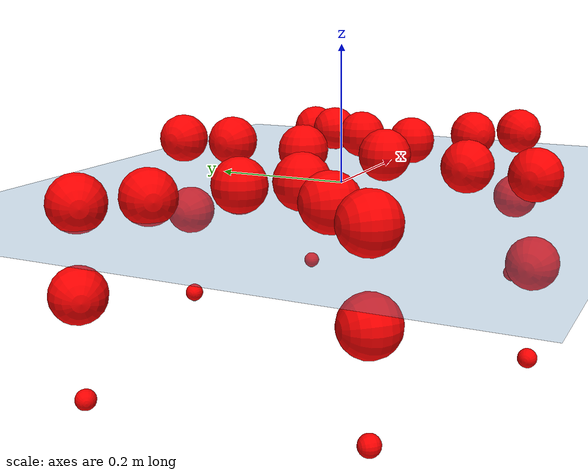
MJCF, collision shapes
<mujoco model="Golem">
  <compiler angle="radian" assetdir="assets" balanceinertia="true" inertiafromgeom="false"/>

  <option timestep="0.005" density="1.2" viscosity="2e-05"/>

  <size nkey="1"/>

  <visual>
    <quality shadowsize="8192"/>
    <map shadowclip="0.5"/>
  </visual>

  <default>
    <default class="/">
      <joint armature="0.01" damping="0.01" frictionloss="0.01"/>
      <geom contype="0" conaffinity="0" group="1" solref="-1000 -80"/>
      <site size="0.01 0.005 0.005" group="5"/>
      <general forcelimited="true" biastype="affine" gainprm="25" biasprm="0 -25 -0.5"/>
      <default class="visual">
        <geom type="mesh" group="2"/>
      </default>
      <default class="collision">
        <geom group="3"/>
      </default>
      <default class="foot">
        <geom size="0.01 0 0" condim="6" group="4" priority="1" solimp="0.015 1 0.01"/>
      </default>
      <default class="reward_collision_sphere">
        <geom group="5" rgba="1 0 0 1"/>
      </default>
    </default>
  </default>

  <asset>
    <texture type="skybox" colorspace="auto" name="//unnamed_texture_0" builtin="gradient" rgb1="0.95 0.95 0.95" rgb2="0.95 0.95 0.95" width="100" height="600"/>
    <texture type="2d" colorspace="auto" name="texplane" builtin="checker" rgb1="0.345 0.575 0.748" rgb2="0.345 0.575 0.748" markrgb="1 1 1" width="512" height="512"/>
    <material name="MatPlane" class="/" texture="texplane" texuniform="true" texrepeat="2 2" specular="0.9"/>
    <mesh name="body" class="/" file="body.stl" scale="0.001 0.001 0.001"/>
    <mesh name="coxa" class="/" file="coxa.stl" scale="0.001 0.001 0.001"/>
    <mesh name="femur" class="/" file="femur.stl" scale="0.001 0.001 0.001"/>
    <mesh name="tibia" class="/" file="tibia.stl" scale="0.001 0.001 0.001"/>
    <mesh name="tarsus" class="/" file="tarsus.stl" scale="0.001 0.001 0.001"/>
  </asset>

  <worldbody>
    <geom name="floor" class="/" size="100 100 0.125" type="plane" group="0" material="MatPlane"/>
    <light name="toplight_shadow" class="/" pos="0 0 5" dir="0.0990148 0.0990148 -0.990148" type="directional" ambient="0.04 0.04 0.04" diffuse="0.55 0.55 0.55" specular="0.12 0.12 0.12"/>
    <light name="toplight_fill" class="/" pos="0 0 5" dir="0.0990148 0.0990148 -0.990148" type="directional" castshadow="false" ambient="0.04 0.04 0.04" diffuse="0.3 0.3 0.3" specular="0.08 0.08 0.08"/>
    <body name="trunk" pos="-0.00149336 0.0013029 -0.000508502" quat="1 5.16913e-05 0.000106866 0.000214417">
      <inertial pos="-0.00538066 0.000425878 -0.00608777" quat="0.999907 0.0128498 0.00150966 -0.00435945" mass="2.59619" diaginertia="0.0291314 0.0036609 0.00106774"/>
      <joint name="//unnamed_joint_0" type="free"/>
      <geom name="//unnamed_geom_1" class="/" pos="0 0 0.0424527" quat="1 0 0 0" type="mesh" rgba="0.9 0.9 0.9 1" mesh="body"/>
      <site name="imu" class="/" pos="0.17876 0.00785255 0.106533" size="0.00932107"/>
      <camera name="track" class="/" pos="0 -1.67122 0" quat="0.707107 0.707107 0 0" mode="trackcom"/>
      <camera name="ego_camera" class="/" pos="0.168661 0 0.0663324" quat="-0.5 -0.5 0.5 0.5"/>
      <body name="coxa_RR" pos="-0.233958 -0.0692324 0.0444661" quat="0.382948 3.56578e-05 -1.4014e-05 -0.92377">
        <inertial pos="-1.77814e-05 0.00294333 0.000197381" quat="0.999989 -0.00151758 -0.00300837 0.00337226" mass="0.164128" diaginertia="0.0379757 0.00435644 0.00130902"/>
        <joint name="coxa_joint_RR" class="/" pos="0 0 0" axis="-0.0372021 -0.033024 -0.998762" range="-3.05813 3.15134" armature="0.00954333" damping="0.0181333" frictionloss="0.00902257"/>
        <geom name="//unnamed_geom_2" class="/" type="mesh" rgba="0.2 0.2 0.2 1" mesh="coxa"/>
        <geom name="//unnamed_geom_3" class="reward_collision_sphere" size="0.0372843" pos="-0.0389217 0 0"/>
        <body name="femur_RR" pos="0.0699437 -0.00306518 -0.00277147" quat="0.500985 -0.499533 0.498788 0.500691">
          <inertial pos="0.000540481 0.000953038 0.00321909" quat="0.999961 0.000828953 0.00698791 -0.00524379" mass="0.173303" diaginertia="0.0358058 0.00450984 0.00134856"/>
          <joint name="femur_joint_RR" class="/" pos="0 0 0" axis="-0.0290297 -0.0216081 -0.999345" range="-3.14113 3.12997" armature="0.00926553" damping="0.011534" frictionloss="0.0085161"/>
          <geom name="//unnamed_geom_4" class="/" type="mesh" rgba="0.9 0.9 0.9 1" mesh="femur"/>
          <geom name="//unnamed_geom_5" class="reward_collision_sphere" size="0.0372843"/>
          <body name="tibia_RR" pos="0.00289081 -0.0927214 0.00973706" quat="1.51061e-05 1 -0.00050285 -0.000104866">
            <inertial pos="-0.00221845 0.00865088 0.00197792" quat="0.999038 -0.0149843 0.038492 0.0147143" mass="0.162025" diaginertia="0.0329034 0.00392713 0.001267"/>
            <joint name="tibia_joint_RR" class="/" pos="0 0 0" axis="0.0143678 -0.0160013 0.999769" stiffness="0.000170328" range="-3.22377 3.13008" armature="0.00839787" damping="0" frictionloss="0.00978051"/>
            <geom name="//unnamed_geom_6" class="/" type="mesh" rgba="0.2 0.2 0.2 1" mesh="tibia"/>
            <geom name="//unnamed_geom_7" class="reward_collision_sphere" size="0.0372843"/>
            <body name="tarsus_RR" pos="0.110673 0.00889473 0.00286268" quat="0.999999 0.000117228 0.00148363 0.000312879">
              <inertial pos="0.0806647 -0.000403711 0.00442721" quat="0.470027 0.520774 0.501143 0.50668" mass="0.152002" diaginertia="0.0360873 0.00394691 0.0014136"/>
              <joint name="tarsus_joint_RR" class="/" pos="0 0 0" axis="-0.0114776 -0.00254083 0.999931" range="-3.05577 3.11215" armature="0.0093913" damping="0.0130705" frictionloss="0.00666988"/>
              <geom name="//unnamed_geom_8" class="/" type="mesh" rgba="0.9 0.9 0.9 1" mesh="tarsus"/>
              <geom name="foot_1" class="foot" size="0.00843253" pos="0.145308 0 0" quat="0 -0.707107 0 0.707107"/>
              <geom name="//unnamed_geom_10" class="reward_collision_sphere" size="0.0372843"/>
              <geom name="//unnamed_geom_11" class="reward_collision_sphere" size="0.0139816" pos="0.139469 0 0"/>
              <site name="foot_1" class="foot" pos="0.145308 0 0" quat="0 -0.707107 0 0.707107" size="0.00932107"/>
            </body>
          </body>
        </body>
      </body>
      <body name="coxa_RM" pos="-0.000644825 -0.108526 0.0466333" quat="0.705823 0.00468383 0.000547046 -0.708372">
        <inertial pos="-0.0046012 0.00169615 0.00671622" quat="0.999997 -0.00179741 -0.00124254 -0.00139074" mass="0.162766" diaginertia="0.0379629 0.00378886 0.00126046"/>
        <joint name="coxa_joint_RM" class="/" pos="0 0 0" axis="0.00055654 -0.00261376 -0.999996" range="-3.09731 3.12212" armature="0.00674573" damping="0.0307644" frictionloss="0.00892395"/>
        <geom name="//unnamed_geom_12" class="/" type="mesh" rgba="0.2 0.2 0.2 1" mesh="coxa"/>
        <geom name="//unnamed_geom_13" class="reward_collision_sphere" size="0.0372843" pos="-0.0389217 0 0"/>
        <body name="femur_RM" pos="0.0816203 0.00684597 -0.00750349" quat="0.500728 -0.500183 0.499924 0.499164">
          <inertial pos="-0.00856295 0.00339385 0.00116264" quat="0.999996 0.000808699 -0.00096644 0.00250804" mass="0.178042" diaginertia="0.0440238 0.00447134 0.00155685"/>
          <joint name="femur_joint_RM" class="/" pos="0 0 0" axis="0.0195737 -0.0153249 -0.999691" range="-3.14585 3.29519" armature="0.00954075" damping="0" frictionloss="0.0106198"/>
          <geom name="//unnamed_geom_14" class="/" type="mesh" rgba="0.9 0.9 0.9 1" mesh="femur"/>
          <geom name="//unnamed_geom_15" class="reward_collision_sphere" size="0.0372843"/>
          <body name="tibia_RM" pos="0.00356038 -0.0946038 0.00118573" quat="-0.0013114 0.999998 -0.000582945 0.00111708">
            <inertial pos="0.00362746 -0.00985642 0.00215377" quat="0.999856 -0.00636305 -0.0042277 0.0151632" mass="0.170648" diaginertia="0.0384456 0.00427746 0.00130103"/>
            <joint name="tibia_joint_RM" class="/" pos="0 0 0" axis="-0.000235108 0.00348704 0.999994" stiffness="0.00220743" range="-3.10149 3.06267" armature="0.00935896" damping="0" frictionloss="0.00913217"/>
            <geom name="//unnamed_geom_16" class="/" type="mesh" rgba="0.2 0.2 0.2 1" mesh="tibia"/>
            <geom name="//unnamed_geom_17" class="reward_collision_sphere" size="0.0372843"/>
            <body name="tarsus_RM" pos="0.123706 0.0020074 -0.000107286" quat="1 -0.000664964 -0.0004998 -0.000306734">
              <inertial pos="0.0710031 -0.00163317 0.000131769" quat="0.507961 0.498576 0.495065 0.498305" mass="0.141971" diaginertia="0.0361335 0.00392435 0.0011125"/>
              <joint name="tarsus_joint_RM" class="/" pos="0 0 0" axis="-0.00041268 -0.00126222 0.999999" range="-3.03094 3.26296" armature="0.0089842" damping="0.00963888" frictionloss="0.0118611"/>
              <geom name="//unnamed_geom_18" class="/" type="mesh" rgba="0.9 0.9 0.9 1" mesh="tarsus"/>
              <geom name="foot_2" class="foot" size="0.00796485" pos="0.145308 0 0" quat="0 -0.707107 0 0.707107"/>
              <geom name="//unnamed_geom_20" class="reward_collision_sphere" size="0.0372843"/>
              <geom name="//unnamed_geom_21" class="reward_collision_sphere" size="0.0139816" pos="0.139469 0 0"/>
              <site name="foot_2" class="foot" pos="0.145308 0 0" quat="0 -0.707107 0 0.707107" size="0.00932107"/>
            </body>
          </body>
        </body>
      </body>
      <body name="coxa_RF" pos="0.231893 -0.0631583 0.035749" quat="0.923807 8.76067e-05 -0.00029868 -0.382859">
        <inertial pos="-0.000756697 0.00807371 -0.00533803" quat="0.999243 0.0112845 0.0372277 -0.000826309" mass="0.184223" diaginertia="0.0394212 0.0043357 0.00136721"/>
        <joint name="coxa_joint_RF" class="/" pos="0 0 0" axis="-0.00118216 -0.0323242 -0.999477" stiffness="0.0107623" range="-3.30691 3.08734" armature="0.0123749" damping="0.0203463" frictionloss="0.00850931"/>
        <geom name="//unnamed_geom_22" class="/" type="mesh" rgba="0.2 0.2 0.2 1" mesh="coxa"/>
        <geom name="//unnamed_geom_23" class="reward_collision_sphere" size="0.0372843" pos="-0.0389217 0 0"/>
        <body name="femur_RF" pos="0.0758586 0.00241316 0.00366955" quat="0.500041 -0.500029 0.500044 0.499886">
          <inertial pos="0.00498621 -0.00791458 0.00219907" quat="1 -6.88593e-05 -0.000107238 -0.00015898" mass="0.157676" diaginertia="0.033484 0.00367627 0.00114428"/>
          <joint name="femur_joint_RF" class="/" pos="0 0 0" axis="0.00399248 0.00592552 -0.999974" range="-3.17852 3.18263" armature="0.00911709" damping="0.00597838" frictionloss="0.0103352"/>
          <geom name="//unnamed_geom_24" class="/" type="mesh" rgba="0.9 0.9 0.9 1" mesh="femur"/>
          <geom name="//unnamed_geom_25" class="reward_collision_sphere" size="0.0372843"/>
          <body name="tibia_RF" pos="-0.000691483 -0.0872538 -0.00183914" quat="0.000107278 1 0.000362184 -1.68418e-05">
            <inertial pos="0.000316752 0.000333839 0.00931403" quat="0.999419 0.0164592 -0.0248761 -0.016478" mass="0.166159" diaginertia="0.0365651 0.00446487 0.00119283"/>
            <joint name="tibia_joint_RF" class="/" pos="0 0 0" axis="0.00122765 -0.00661954 0.999977" range="-3.17482 3.08258" armature="0.0100487" damping="0.018685" frictionloss="0.00791517"/>
            <geom name="//unnamed_geom_26" class="/" type="mesh" rgba="0.2 0.2 0.2 1" mesh="tibia"/>
            <geom name="//unnamed_geom_27" class="reward_collision_sphere" size="0.0372843"/>
            <body name="tarsus_RF" pos="0.113855 -0.00096903 -0.000508363" quat="0.999996 0.00188786 -0.000665451 -0.00174354">
              <inertial pos="0.0797501 0.000941437 -0.000307477" quat="0.504636 0.494289 0.504189 0.496804" mass="0.153661" diaginertia="0.0351969 0.0042589 0.00136677"/>
              <joint name="tarsus_joint_RF" class="/" pos="0 0 0" axis="0.0147226 0.00705742 0.999867" stiffness="0.0255532" range="-3.25336 3.13786" armature="0.0101615" damping="0.0383614" frictionloss="0.00991199"/>
              <geom name="//unnamed_geom_28" class="/" type="mesh" rgba="0.9 0.9 0.9 1" mesh="tarsus"/>
              <geom name="foot_3" class="foot" size="0.0090064" pos="0.145308 0 0" quat="0 -0.707107 0 0.707107"/>
              <geom name="//unnamed_geom_30" class="reward_collision_sphere" size="0.0372843"/>
              <geom name="//unnamed_geom_31" class="reward_collision_sphere" size="0.0139816" pos="0.139469 0 0"/>
              <site name="foot_3" class="foot" pos="0.145308 0 0" quat="0 -0.707107 0 0.707107" size="0.00932107"/>
            </body>
          </body>
        </body>
      </body>
      <body name="coxa_LR" pos="-0.236416 0.0745425 0.0321849" quat="0.382622 -9.50175e-05 7.87625e-05 0.923905">
        <inertial pos="0.00494908 0.0055731 -0.000491623" quat="0.999646 0.0253206 0.00275558 -0.00770988" mass="0.174938" diaginertia="0.0343055 0.00459212 0.00152529"/>
        <joint name="coxa_joint_LR" class="/" pos="0 0 0" axis="0.00037755 -0.00165698 -0.999999" range="-3.07725 3.10103" armature="0.0087216" damping="0" frictionloss="0.0102617"/>
        <geom name="//unnamed_geom_32" class="/" type="mesh" rgba="0.2 0.2 0.2 1" mesh="coxa"/>
        <geom name="//unnamed_geom_33" class="reward_collision_sphere" size="0.0372843" pos="-0.0389217 0 0"/>
        <body name="femur_LR" pos="0.0779206 0.00424208 -0.00486308" quat="0.499879 -0.500108 0.500145 0.499868">
          <inertial pos="0.00156483 0.0100421 0.000937306" quat="0.999998 0.000486802 0.000480589 0.00163499" mass="0.160043" diaginertia="0.0410088 0.00387592 0.00144246"/>
          <joint name="femur_joint_LR" class="/" pos="0 0 0" axis="0.00199508 -0.0043128 0.999989" range="-3.28646 3.13369" armature="0.00854185" damping="0.0583686" frictionloss="0.0094369"/>
          <geom name="//unnamed_geom_34" class="/" type="mesh" rgba="0.9 0.9 0.9 1" mesh="femur"/>
          <geom name="//unnamed_geom_35" class="reward_collision_sphere" size="0.0372843"/>
          <body name="tibia_LR" pos="-0.000947083 -0.0870237 0.00940272" quat="-0.0013599 0.999999 -0.000393547 -0.000351564">
            <inertial pos="-0.00320509 0.00547823 0.00343437" quat="0.999417 -0.00904098 0.0321095 0.00732309" mass="0.167152" diaginertia="0.0398981 0.00428959 0.00129973"/>
            <joint name="tibia_joint_LR" class="/" pos="0 0 0" axis="-0.00154311 0.000476612 -0.999999" stiffness="0.014407" range="-3.1969 2.98767" armature="0.00910195" damping="0.0194171" frictionloss="0.00915467"/>
            <geom name="//unnamed_geom_36" class="/" type="mesh" rgba="0.2 0.2 0.2 1" mesh="tibia"/>
            <geom name="//unnamed_geom_37" class="reward_collision_sphere" size="0.0372843"/>
            <body name="tarsus_LR" pos="0.118002 0.00416038 0.00951787" quat="0.999997 0.00153032 -0.000909739 -0.00169074">
              <inertial pos="0.0755518 0.00863158 0.00738127" quat="0.497261 0.504947 0.500979 0.496769" mass="0.167678" diaginertia="0.0365432 0.00425609 0.00141689"/>
              <joint name="tarsus_joint_LR" class="/" pos="0 0 0" axis="-0.000296501 -0.0366921 -0.999327" stiffness="0.0374432" range="-3.1085 3.2063" armature="0.0115152" damping="0.0379155" frictionloss="0.0108977"/>
              <geom name="//unnamed_geom_38" class="/" type="mesh" rgba="0.9 0.9 0.9 1" mesh="tarsus"/>
              <geom name="foot_4" class="foot" size="0.00590774" pos="0.145308 0 0" quat="0.707107 0 -0.707107 0"/>
              <geom name="//unnamed_geom_40" class="reward_collision_sphere" size="0.0372843"/>
              <geom name="//unnamed_geom_41" class="reward_collision_sphere" size="0.0139816" pos="0.139469 0 0"/>
              <site name="foot_4" class="foot" pos="0.145308 0 0" quat="0.707107 0 -0.707107 0" size="0.00932107"/>
            </body>
          </body>
        </body>
      </body>
      <body name="coxa_LM" pos="0.00929162 0.103505 0.0434021" quat="0.707303 -7.63098e-05 -0.000142951 0.70691">
        <inertial pos="0.000993288 0.00480863 -0.0007238" quat="0.999399 -0.00101979 -0.0139494 0.0317309" mass="0.154175" diaginertia="0.0324715 0.00363785 0.00113716"/>
        <joint name="coxa_joint_LM" class="/" pos="0 0 0" axis="0.0467114 -0.00943572 -0.998864" stiffness="0.00469465" range="-3.09951 3.15248" armature="0.00920087" damping="0.00879526" frictionloss="0.00766691"/>
        <geom name="//unnamed_geom_42" class="/" type="mesh" rgba="0.2 0.2 0.2 1" mesh="coxa"/>
        <geom name="//unnamed_geom_43" class="reward_collision_sphere" size="0.0372843" pos="-0.0389217 0 0"/>
        <body name="femur_LM" pos="0.0831323 -0.00105008 0.00497442" quat="0.500013 -0.499989 0.499996 0.500002">
          <inertial pos="-0.00477213 -0.00183594 -0.000470868" quat="0.999651 -0.024874 -0.00298966 0.0084323" mass="0.148068" diaginertia="0.0375066 0.0033875 0.00119975"/>
          <joint name="femur_joint_LM" class="/" pos="0 0 0" axis="0.00303176 0.000260027 0.999995" stiffness="0.000141196" range="-3.13656 3.17945" armature="0.00827595" damping="0" frictionloss="0.0114089"/>
          <geom name="//unnamed_geom_44" class="/" type="mesh" rgba="0.9 0.9 0.9 1" mesh="femur"/>
          <geom name="//unnamed_geom_45" class="reward_collision_sphere" size="0.0372843"/>
          <body name="tibia_LM" pos="0.00163116 -0.0888172 0.00135404" quat="0.00192932 0.999995 0.00242282 0.000423068">
            <inertial pos="-0.00383081 0.00237055 0.00675465" quat="0.999321 -0.0254834 -0.00131285 0.0265636" mass="0.154784" diaginertia="0.0351583 0.00353844 0.00125516"/>
            <joint name="tibia_joint_LM" class="/" pos="0 0 0" axis="0.0138798 -0.0012973 -0.999903" stiffness="0.0391056" range="-3.15054 3.14127" armature="0.00902909" damping="0" frictionloss="0.0120814"/>
            <geom name="//unnamed_geom_46" class="/" type="mesh" rgba="0.2 0.2 0.2 1" mesh="tibia"/>
            <geom name="//unnamed_geom_47" class="reward_collision_sphere" size="0.0372843"/>
            <body name="tarsus_LM" pos="0.116478 -0.00635581 0.00209806" quat="0.999994 0.00197634 0.00259761 -0.00107372">
              <inertial pos="0.0765933 0.00163053 -0.00271665" quat="0.473499 0.492338 0.509082 0.523676" mass="0.144283" diaginertia="0.0315538 0.00402665 0.00124895"/>
              <joint name="tarsus_joint_LM" class="/" pos="0 0 0" axis="-0.000603929 -0.0463635 -0.998924" range="-3.09972 3.1005" armature="0.00838393" damping="0.0361621" frictionloss="0.00592331"/>
              <geom name="//unnamed_geom_48" class="/" type="mesh" rgba="0.9 0.9 0.9 1" mesh="tarsus"/>
              <geom name="foot_5" class="foot" size="0.00900418" pos="0.145308 0 0" quat="0.707107 0 -0.707107 0"/>
              <geom name="//unnamed_geom_50" class="reward_collision_sphere" size="0.0372843"/>
              <geom name="//unnamed_geom_51" class="reward_collision_sphere" size="0.0139816" pos="0.139469 0 0"/>
              <site name="foot_5" class="foot" pos="0.145308 0 0" quat="0.707107 0 -0.707107 0" size="0.00932107"/>
            </body>
          </body>
        </body>
      </body>
      <body name="coxa_LF" pos="0.223197 0.0761757 0.0418113" quat="0.924037 -0.00026947 7.42537e-05 0.382304">
        <inertial pos="0.00140396 0.000423218 -0.00674832" quat="0.999669 -0.00390015 0.00406017 0.0250928" mass="0.165421" diaginertia="0.0392024 0.00359325 0.0013167"/>
        <joint name="coxa_joint_LF" class="/" pos="0 0 0" axis="0.000121242 0.0298999 -0.999553" range="-3.16799 3.13989" armature="0.0123143" damping="0.00400889" frictionloss="0.00471735"/>
        <geom name="//unnamed_geom_52" class="/" type="mesh" rgba="0.2 0.2 0.2 1" mesh="coxa"/>
        <geom name="//unnamed_geom_53" class="reward_collision_sphere" size="0.0372843" pos="-0.0389217 0 0"/>
        <body name="femur_LF" pos="0.0805334 0.00388887 -0.00669612" quat="0.499816 -0.500239 0.500464 0.499481">
          <inertial pos="0.00953146 -0.00167676 -0.009982" quat="0.999948 0.00808093 0.000327892 0.00615465" mass="0.170279" diaginertia="0.0340709 0.00427006 0.00132562"/>
          <joint name="femur_joint_LF" class="/" pos="0 0 0" axis="0.00720852 0.0021403 0.999972" range="-3.09953 3.09911" armature="0.00754326" damping="0" frictionloss="0.00960877"/>
          <geom name="//unnamed_geom_54" class="/" type="mesh" rgba="0.9 0.9 0.9 1" mesh="femur"/>
          <geom name="//unnamed_geom_55" class="reward_collision_sphere" size="0.0372843"/>
          <body name="tibia_LF" pos="0.00864232 -0.0917674 0.00428591" quat="-0.0011819 0.999998 0.000809053 0.000982955">
            <inertial pos="0.00176367 0.00935834 -0.0039315" quat="0.999998 -0.00160525 -0.00055416 0.000722709" mass="0.179909" diaginertia="0.0460304 0.00457745 0.00143855"/>
            <joint name="tibia_joint_LF" class="/" pos="0 0 0" axis="-0.00357918 -0.0132821 -0.999905" range="-3.16792 3.17401" armature="0.00699771" damping="0.0248382" frictionloss="0.0101079"/>
            <geom name="//unnamed_geom_56" class="/" type="mesh" rgba="0.2 0.2 0.2 1" mesh="tibia"/>
            <geom name="//unnamed_geom_57" class="reward_collision_sphere" size="0.0372843"/>
            <body name="tarsus_LF" pos="0.120753 0.00273253 -0.0087172" quat="1 -0.000539242 -0.000428246 -0.000118367">
              <inertial pos="0.0795729 -0.00286148 -0.00167161" quat="0.491678 0.513692 0.504507 0.48974" mass="0.193501" diaginertia="0.0405797 0.00489262 0.00140768"/>
              <joint name="tarsus_joint_LF" class="/" pos="0 0 0" axis="0.00632214 0.00218035 -0.999978" range="-3.12233 3.1402" armature="0.00640946" damping="0.0396528" frictionloss="0.0135538"/>
              <geom name="//unnamed_geom_58" class="/" type="mesh" rgba="0.9 0.9 0.9 1" mesh="tarsus"/>
              <geom name="foot_6" class="foot" size="0.00904122" pos="0.145308 0 0" quat="0.707107 0 -0.707107 0"/>
              <geom name="//unnamed_geom_60" class="reward_collision_sphere" size="0.0372843"/>
              <geom name="//unnamed_geom_61" class="reward_collision_sphere" size="0.0139816" pos="0.139469 0 0"/>
              <site name="foot_6" class="foot" pos="0.145308 0 0" quat="0.707107 0 -0.707107 0" size="0.00932107"/>
            </body>
          </body>
        </body>
      </body>
    </body>
  </worldbody>

  <contact>
    <pair class="/" geom1="floor" geom2="foot_1" name="//unnamed_contact_0"/>
    <pair class="/" geom1="floor" geom2="foot_2" name="//unnamed_contact_1"/>
    <pair class="/" geom1="floor" geom2="foot_3" name="//unnamed_contact_2"/>
    <pair class="/" geom1="floor" geom2="foot_4" name="//unnamed_contact_3"/>
    <pair class="/" geom1="floor" geom2="foot_5" name="//unnamed_contact_4"/>
    <pair class="/" geom1="floor" geom2="foot_6" name="//unnamed_contact_5"/>
  </contact>

  <actuator>
    <general name="coxa_joint_RR" class="/" joint="coxa_joint_RR" forcerange="-6.98881 6.98881" gainprm="19.1905" biasprm="0 -19.1905 -0.467039"/>
    <general name="femur_joint_RR" class="/" joint="femur_joint_RR" forcerange="-6.30222 6.30222" gainprm="19.1905" biasprm="0 -19.1905 -0.467039"/>
    <general name="tibia_joint_RR" class="/" joint="tibia_joint_RR" forcerange="-6.79323 6.79323" gainprm="19.1905" biasprm="0 -19.1905 -0.467039"/>
    <general name="tarsus_joint_RR" class="/" joint="tarsus_joint_RR" forcerange="-5.01606 5.01606" gainprm="19.1905" biasprm="0 -19.1905 -0.467039"/>
    <general name="coxa_joint_RM" class="/" joint="coxa_joint_RM" forcerange="-7.2976 7.2976" gainprm="19.1905" biasprm="0 -19.1905 -0.467039"/>
    <general name="femur_joint_RM" class="/" joint="femur_joint_RM" forcerange="-6.76254 6.76254" gainprm="19.1905" biasprm="0 -19.1905 -0.467039"/>
    <general name="tibia_joint_RM" class="/" joint="tibia_joint_RM" forcerange="-7.0027 7.0027" gainprm="19.1905" biasprm="0 -19.1905 -0.467039"/>
    <general name="tarsus_joint_RM" class="/" joint="tarsus_joint_RM" forcerange="-4.59623 4.59623" gainprm="19.1905" biasprm="0 -19.1905 -0.467039"/>
    <general name="coxa_joint_RF" class="/" joint="coxa_joint_RF" forcerange="-6.0977 6.0977" gainprm="19.1905" biasprm="0 -19.1905 -0.467039"/>
    <general name="femur_joint_RF" class="/" joint="femur_joint_RF" forcerange="-8.86933 8.86933" gainprm="19.1905" biasprm="0 -19.1905 -0.467039"/>
    <general name="tibia_joint_RF" class="/" joint="tibia_joint_RF" forcerange="-5.7971 5.7971" gainprm="19.1905" biasprm="0 -19.1905 -0.467039"/>
    <general name="tarsus_joint_RF" class="/" joint="tarsus_joint_RF" forcerange="-7.95336 7.95336" gainprm="19.1905" biasprm="0 -19.1905 -0.467039"/>
    <general name="coxa_joint_LR" class="/" joint="coxa_joint_LR" forcerange="-7.66521 7.66521" gainprm="19.1905" biasprm="0 -19.1905 -0.467039"/>
    <general name="femur_joint_LR" class="/" joint="femur_joint_LR" forcerange="-7.29019 7.29019" gainprm="19.1905" biasprm="0 -19.1905 -0.467039"/>
    <general name="tibia_joint_LR" class="/" joint="tibia_joint_LR" forcerange="-6.65737 6.65737" gainprm="19.1905" biasprm="0 -19.1905 -0.467039"/>
    <general name="tarsus_joint_LR" class="/" joint="tarsus_joint_LR" forcerange="-7.68301 7.68301" gainprm="19.1905" biasprm="0 -19.1905 -0.467039"/>
    <general name="coxa_joint_LM" class="/" joint="coxa_joint_LM" forcerange="-6.46503 6.46503" gainprm="19.1905" biasprm="0 -19.1905 -0.467039"/>
    <general name="femur_joint_LM" class="/" joint="femur_joint_LM" forcerange="-7.80701 7.80701" gainprm="19.1905" biasprm="0 -19.1905 -0.467039"/>
    <general name="tibia_joint_LM" class="/" joint="tibia_joint_LM" forcerange="-7.06686 7.06686" gainprm="19.1905" biasprm="0 -19.1905 -0.467039"/>
    <general name="tarsus_joint_LM" class="/" joint="tarsus_joint_LM" forcerange="-6.53188 6.53188" gainprm="19.1905" biasprm="0 -19.1905 -0.467039"/>
    <general name="coxa_joint_LF" class="/" joint="coxa_joint_LF" forcerange="-8.55112 8.55112" gainprm="19.1905" biasprm="0 -19.1905 -0.467039"/>
    <general name="femur_joint_LF" class="/" joint="femur_joint_LF" forcerange="-7.67109 7.67109" gainprm="19.1905" biasprm="0 -19.1905 -0.467039"/>
    <general name="tibia_joint_LF" class="/" joint="tibia_joint_LF" forcerange="-5.95533 5.95533" gainprm="19.1905" biasprm="0 -19.1905 -0.467039"/>
    <general name="tarsus_joint_LF" class="/" joint="tarsus_joint_LF" forcerange="-6.98343 6.98343" gainprm="19.1905" biasprm="0 -19.1905 -0.467039"/>
  </actuator>

  <sensor>
    <gyro site="imu" name="imu_angular_velocity"/>
    <velocimeter site="imu" name="imu_linear_velocity"/>
    <framelinvel objtype="site" objname="foot_1" name="foot_1_global_linear_velocity"/>
    <framelinvel objtype="site" objname="foot_2" name="foot_2_global_linear_velocity"/>
    <framelinvel objtype="site" objname="foot_3" name="foot_3_global_linear_velocity"/>
    <framelinvel objtype="site" objname="foot_4" name="foot_4_global_linear_velocity"/>
    <framelinvel objtype="site" objname="foot_5" name="foot_5_global_linear_velocity"/>
    <framelinvel objtype="site" objname="foot_6" name="foot_6_global_linear_velocity"/>
  </sensor>

  <keyframe>
    <key name="home" qpos="0 0 0.1457 1 0 0 0 0 0 0 0 0 0 0 0 0 0 0 0 0 0 0 0 0 0 0 0 0 0 0 0"/>
  </keyframe>
</mujoco>
